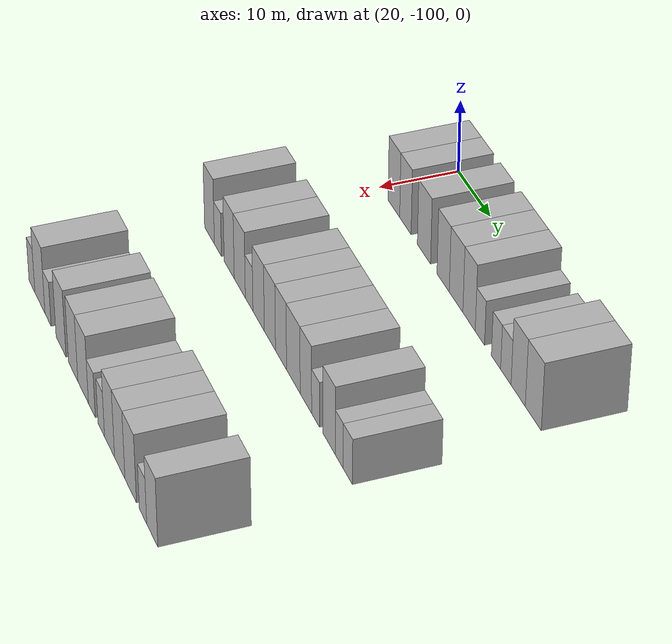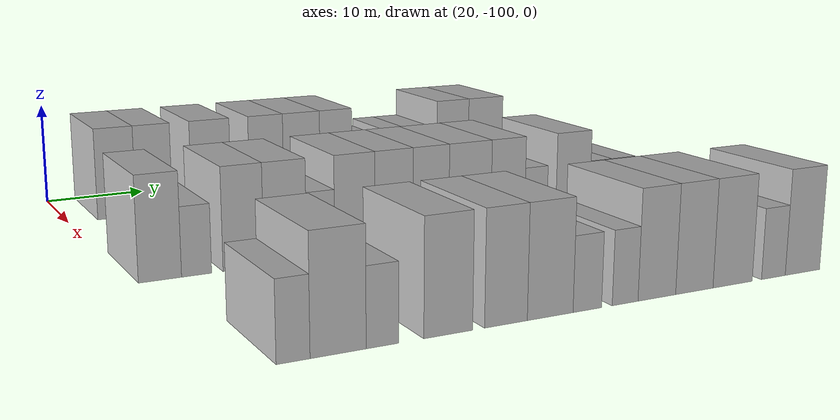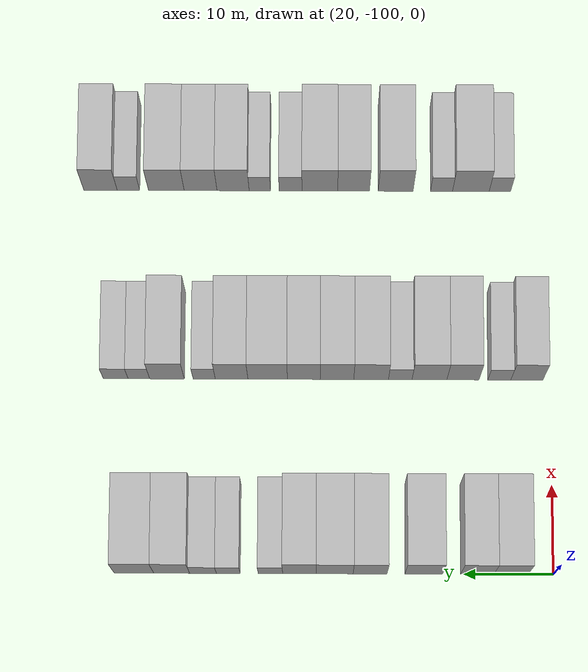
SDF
<sdf version="1.6">
 <world name="default">
  <model name="building_34">
   <static>1</static>
   <pose>25.0000 -95.2785 0 0.000000 0.000000 0.000000</pose>
   <link name="link">
    <pose>0 0 4.50 0 0 0</pose>
    <collision name="collision"><geometry><box><size>10.0000 3.8016 9.0000</size></box></geometry></collision>
    <visual name="visual">
     <cast_shadows>0</cast_shadows>
     <geometry><box><size>10.0000 3.8016 9.0000</size></box></geometry>
     <material>
      <script>
       <uri>model://HANNAS_wall/materials/scripts</uri>
       <uri>model://HANNAS_wall/materials/textures</uri>
       <name>vrc/HANNAS_wall</name>
      </script>
     </material>
    </visual>
   </link>
  </model>
  <model name="building_35">
   <static>1</static>
   <pose>25.0000 -91.5232 0 0.000000 0.000000 0.000000</pose>
   <link name="link">
    <pose>0 0 4.50 0 0 0</pose>
    <collision name="collision"><geometry><box><size>10.0000 3.7090 9.0000</size></box></geometry></collision>
    <visual name="visual">
     <cast_shadows>0</cast_shadows>
     <geometry><box><size>10.0000 3.7090 9.0000</size></box></geometry>
     <material>
      <script>
       <uri>model://HANNAS_wall/materials/scripts</uri>
       <uri>model://HANNAS_wall/materials/textures</uri>
       <name>vrc/HANNAS_wall</name>
      </script>
     </material>
    </visual>
   </link>
  </model>
  <model name="building_36">
   <static>1</static>
   <pose>25.0000 -85.5748 0 0.000000 0.000000 0.000000</pose>
   <link name="link">
    <pose>0 0 4.50 0 0 0</pose>
    <collision name="collision"><geometry><box><size>10.0000 4.1879 9.0000</size></box></geometry></collision>
    <visual name="visual">
     <cast_shadows>0</cast_shadows>
     <geometry><box><size>10.0000 4.1879 9.0000</size></box></geometry>
     <material>
      <script>
       <uri>model://HANNAS_wall/materials/scripts</uri>
       <uri>model://HANNAS_wall/materials/textures</uri>
       <name>vrc/HANNAS_wall</name>
      </script>
     </material>
    </visual>
   </link>
  </model>
  <model name="building_37">
   <static>1</static>
   <pose>25.0000 -79.5906 0 0.000000 0.000000 0.000000</pose>
   <link name="link">
    <pose>0 0 4.50 0 0 0</pose>
    <collision name="collision"><geometry><box><size>10.0000 3.7804 9.0000</size></box></geometry></collision>
    <visual name="visual">
     <cast_shadows>0</cast_shadows>
     <geometry><box><size>10.0000 3.7804 9.0000</size></box></geometry>
     <material>
      <script>
       <uri>model://HANNAS_wall/materials/scripts</uri>
       <uri>model://HANNAS_wall/materials/textures</uri>
       <name>vrc/HANNAS_wall</name>
      </script>
     </material>
    </visual>
   </link>
  </model>
  <model name="building_38">
   <static>1</static>
   <pose>25.0000 -75.6365 0 0.000000 0.000000 0.000000</pose>
   <link name="link">
    <pose>0 0 4.50 0 0 0</pose>
    <collision name="collision"><geometry><box><size>10.0000 4.1280 9.0000</size></box></geometry></collision>
    <visual name="visual">
     <cast_shadows>0</cast_shadows>
     <geometry><box><size>10.0000 4.1280 9.0000</size></box></geometry>
     <material>
      <script>
       <uri>model://HANNAS_wall/materials/scripts</uri>
       <uri>model://HANNAS_wall/materials/textures</uri>
       <name>vrc/HANNAS_wall</name>
      </script>
     </material>
    </visual>
   </link>
  </model>
  <model name="building_39">
   <static>1</static>
   <pose>25.0000 -71.7209 0 0.000000 0.000000 0.000000</pose>
   <link name="link">
    <pose>0 0 4.50 0 0 0</pose>
    <collision name="collision"><geometry><box><size>10.0000 3.7032 9.0000</size></box></geometry></collision>
    <visual name="visual">
     <cast_shadows>0</cast_shadows>
     <geometry><box><size>10.0000 3.7032 9.0000</size></box></geometry>
     <material>
      <script>
       <uri>model://HANNAS_wall/materials/scripts</uri>
       <uri>model://HANNAS_wall/materials/textures</uri>
       <name>vrc/HANNAS_wall</name>
      </script>
     </material>
    </visual>
   </link>
  </model>
  <model name="building_40">
   <static>1</static>
   <pose>25.0000 -68.5074 0 0.000000 0.000000 0.000000</pose>
   <link name="link">
    <pose>0 0 3.00 0 0 0</pose>
    <collision name="collision"><geometry><box><size>10.0000 2.7237 6.0000</size></box></geometry></collision>
    <visual name="visual">
     <cast_shadows>0</cast_shadows>
     <geometry><box><size>10.0000 2.7237 6.0000</size></box></geometry>
     <material>
      <script>
       <uri>model://HANNAS_wall/materials/scripts</uri>
       <uri>model://HANNAS_wall/materials/textures</uri>
       <name>vrc/HANNAS_wall</name>
      </script>
     </material>
    </visual>
   </link>
  </model>
  <model name="building_41">
   <static>1</static>
   <pose>25.0000 -63.8175 0 0.000000 0.000000 0.000000</pose>
   <link name="link">
    <pose>0 0 3.00 0 0 0</pose>
    <collision name="collision"><geometry><box><size>10.0000 2.6562 6.0000</size></box></geometry></collision>
    <visual name="visual">
     <cast_shadows>0</cast_shadows>
     <geometry><box><size>10.0000 2.6562 6.0000</size></box></geometry>
     <material>
      <script>
       <uri>model://HANNAS_wall/materials/scripts</uri>
       <uri>model://HANNAS_wall/materials/textures</uri>
       <name>vrc/HANNAS_wall</name>
      </script>
     </material>
    </visual>
   </link>
  </model>
  <model name="building_42">
   <static>1</static>
   <pose>25.0000 -61.0045 0 0.000000 0.000000 0.000000</pose>
   <link name="link">
    <pose>0 0 3.00 0 0 0</pose>
    <collision name="collision"><geometry><box><size>10.0000 2.9698 6.0000</size></box></geometry></collision>
    <visual name="visual">
     <cast_shadows>0</cast_shadows>
     <geometry><box><size>10.0000 2.9698 6.0000</size></box></geometry>
     <material>
      <script>
       <uri>model://HANNAS_wall/materials/scripts</uri>
       <uri>model://HANNAS_wall/materials/textures</uri>
       <name>vrc/HANNAS_wall</name>
      </script>
     </material>
    </visual>
   </link>
  </model>
  <model name="building_43">
   <static>1</static>
   <pose>25.0000 -57.5258 0 0.000000 0.000000 0.000000</pose>
   <link name="link">
    <pose>0 0 4.50 0 0 0</pose>
    <collision name="collision"><geometry><box><size>10.0000 3.9877 9.0000</size></box></geometry></collision>
    <visual name="visual">
     <cast_shadows>0</cast_shadows>
     <geometry><box><size>10.0000 3.9877 9.0000</size></box></geometry>
     <material>
      <script>
       <uri>model://HANNAS_wall/materials/scripts</uri>
       <uri>model://HANNAS_wall/materials/textures</uri>
       <name>vrc/HANNAS_wall</name>
      </script>
     </material>
    </visual>
   </link>
  </model>
  <model name="building_44">
   <static>1</static>
   <pose>25.0000 -53.3298 0 0.000000 0.000000 0.000000</pose>
   <link name="link">
    <pose>0 0 4.50 0 0 0</pose>
    <collision name="collision"><geometry><box><size>10.0000 4.4043 9.0000</size></box></geometry></collision>
    <visual name="visual">
     <cast_shadows>0</cast_shadows>
     <geometry><box><size>10.0000 4.4043 9.0000</size></box></geometry>
     <material>
      <script>
       <uri>model://HANNAS_wall/materials/scripts</uri>
       <uri>model://HANNAS_wall/materials/textures</uri>
       <name>vrc/HANNAS_wall</name>
      </script>
     </material>
    </visual>
   </link>
  </model>
  <model name="building_163">
   <static>1</static>
   <pose>47.0000 -97.3427 0 0.000000 0.000000 0.000000</pose>
   <link name="link">
    <pose>0 0 4.50 0 0 0</pose>
    <collision name="collision"><geometry><box><size>10.0000 3.6336 9.0000</size></box></geometry></collision>
    <visual name="visual">
     <cast_shadows>0</cast_shadows>
     <geometry><box><size>10.0000 3.6336 9.0000</size></box></geometry>
     <material>
      <script>
       <uri>model://HANNAS_wall/materials/scripts</uri>
       <uri>model://HANNAS_wall/materials/textures</uri>
       <name>vrc/HANNAS_wall</name>
      </script>
     </material>
    </visual>
   </link>
  </model>
  <model name="building_164">
   <static>1</static>
   <pose>47.0000 -94.2293 0 0.000000 0.000000 0.000000</pose>
   <link name="link">
    <pose>0 0 3.00 0 0 0</pose>
    <collision name="collision"><geometry><box><size>10.0000 2.5932 6.0000</size></box></geometry></collision>
    <visual name="visual">
     <cast_shadows>0</cast_shadows>
     <geometry><box><size>10.0000 2.5932 6.0000</size></box></geometry>
     <material>
      <script>
       <uri>model://HANNAS_wall/materials/scripts</uri>
       <uri>model://HANNAS_wall/materials/textures</uri>
       <name>vrc/HANNAS_wall</name>
      </script>
     </material>
    </visual>
   </link>
  </model>
  <model name="building_165">
   <static>1</static>
   <pose>47.0000 -90.1132 0 0.000000 0.000000 0.000000</pose>
   <link name="link">
    <pose>0 0 4.50 0 0 0</pose>
    <collision name="collision"><geometry><box><size>10.0000 3.6390 9.0000</size></box></geometry></collision>
    <visual name="visual">
     <cast_shadows>0</cast_shadows>
     <geometry><box><size>10.0000 3.6390 9.0000</size></box></geometry>
     <material>
      <script>
       <uri>model://HANNAS_wall/materials/scripts</uri>
       <uri>model://HANNAS_wall/materials/textures</uri>
       <name>vrc/HANNAS_wall</name>
      </script>
     </material>
    </visual>
   </link>
  </model>
  <model name="building_166">
   <static>1</static>
   <pose>47.0000 -86.3264 0 0.000000 0.000000 0.000000</pose>
   <link name="link">
    <pose>0 0 4.50 0 0 0</pose>
    <collision name="collision"><geometry><box><size>10.0000 3.9347 9.0000</size></box></geometry></collision>
    <visual name="visual">
     <cast_shadows>0</cast_shadows>
     <geometry><box><size>10.0000 3.9347 9.0000</size></box></geometry>
     <material>
      <script>
       <uri>model://HANNAS_wall/materials/scripts</uri>
       <uri>model://HANNAS_wall/materials/textures</uri>
       <name>vrc/HANNAS_wall</name>
      </script>
     </material>
    </visual>
   </link>
  </model>
  <model name="building_167">
   <static>1</static>
   <pose>47.0000 -83.0260 0 0.000000 0.000000 0.000000</pose>
   <link name="link">
    <pose>0 0 3.00 0 0 0</pose>
    <collision name="collision"><geometry><box><size>10.0000 2.6661 6.0000</size></box></geometry></collision>
    <visual name="visual">
     <cast_shadows>0</cast_shadows>
     <geometry><box><size>10.0000 2.6661 6.0000</size></box></geometry>
     <material>
      <script>
       <uri>model://HANNAS_wall/materials/scripts</uri>
       <uri>model://HANNAS_wall/materials/textures</uri>
       <name>vrc/HANNAS_wall</name>
      </script>
     </material>
    </visual>
   </link>
  </model>
  <model name="building_168">
   <static>1</static>
   <pose>47.0000 -79.7313 0 0.000000 0.000000 0.000000</pose>
   <link name="link">
    <pose>0 0 4.50 0 0 0</pose>
    <collision name="collision"><geometry><box><size>10.0000 3.9233 9.0000</size></box></geometry></collision>
    <visual name="visual">
     <cast_shadows>0</cast_shadows>
     <geometry><box><size>10.0000 3.9233 9.0000</size></box></geometry>
     <material>
      <script>
       <uri>model://HANNAS_wall/materials/scripts</uri>
       <uri>model://HANNAS_wall/materials/textures</uri>
       <name>vrc/HANNAS_wall</name>
      </script>
     </material>
    </visual>
   </link>
  </model>
  <model name="building_169">
   <static>1</static>
   <pose>47.0000 -75.8708 0 0.000000 0.000000 0.000000</pose>
   <link name="link">
    <pose>0 0 4.50 0 0 0</pose>
    <collision name="collision"><geometry><box><size>10.0000 3.7977 9.0000</size></box></geometry></collision>
    <visual name="visual">
     <cast_shadows>0</cast_shadows>
     <geometry><box><size>10.0000 3.7977 9.0000</size></box></geometry>
     <material>
      <script>
       <uri>model://HANNAS_wall/materials/scripts</uri>
       <uri>model://HANNAS_wall/materials/textures</uri>
       <name>vrc/HANNAS_wall</name>
      </script>
     </material>
    </visual>
   </link>
  </model>
  <model name="building_170">
   <static>1</static>
   <pose>47.0000 -72.1267 0 0.000000 0.000000 0.000000</pose>
   <link name="link">
    <pose>0 0 4.50 0 0 0</pose>
    <collision name="collision"><geometry><box><size>10.0000 3.6904 9.0000</size></box></geometry></collision>
    <visual name="visual">
     <cast_shadows>0</cast_shadows>
     <geometry><box><size>10.0000 3.6904 9.0000</size></box></geometry>
     <material>
      <script>
       <uri>model://HANNAS_wall/materials/scripts</uri>
       <uri>model://HANNAS_wall/materials/textures</uri>
       <name>vrc/HANNAS_wall</name>
      </script>
     </material>
    </visual>
   </link>
  </model>
  <model name="building_171">
   <static>1</static>
   <pose>47.0000 -68.0451 0 0.000000 0.000000 0.000000</pose>
   <link name="link">
    <pose>0 0 4.50 0 0 0</pose>
    <collision name="collision"><geometry><box><size>10.0000 4.4730 9.0000</size></box></geometry></collision>
    <visual name="visual">
     <cast_shadows>0</cast_shadows>
     <geometry><box><size>10.0000 4.4730 9.0000</size></box></geometry>
     <material>
      <script>
       <uri>model://HANNAS_wall/materials/scripts</uri>
       <uri>model://HANNAS_wall/materials/textures</uri>
       <name>vrc/HANNAS_wall</name>
      </script>
     </material>
    </visual>
   </link>
  </model>
  <model name="building_172">
   <static>1</static>
   <pose>47.0000 -63.9631 0 0.000000 0.000000 0.000000</pose>
   <link name="link">
    <pose>0 0 4.50 0 0 0</pose>
    <collision name="collision"><geometry><box><size>10.0000 3.6911 9.0000</size></box></geometry></collision>
    <visual name="visual">
     <cast_shadows>0</cast_shadows>
     <geometry><box><size>10.0000 3.6911 9.0000</size></box></geometry>
     <material>
      <script>
       <uri>model://HANNAS_wall/materials/scripts</uri>
       <uri>model://HANNAS_wall/materials/textures</uri>
       <name>vrc/HANNAS_wall</name>
      </script>
     </material>
    </visual>
   </link>
  </model>
  <model name="building_173">
   <static>1</static>
   <pose>47.0000 -60.8670 0 0.000000 0.000000 0.000000</pose>
   <link name="link">
    <pose>0 0 3.00 0 0 0</pose>
    <collision name="collision"><geometry><box><size>10.0000 2.5010 6.0000</size></box></geometry></collision>
    <visual name="visual">
     <cast_shadows>0</cast_shadows>
     <geometry><box><size>10.0000 2.5010 6.0000</size></box></geometry>
     <material>
      <script>
       <uri>model://HANNAS_wall/materials/scripts</uri>
       <uri>model://HANNAS_wall/materials/textures</uri>
       <name>vrc/HANNAS_wall</name>
      </script>
     </material>
    </visual>
   </link>
  </model>
  <model name="building_174">
   <static>1</static>
   <pose>47.0000 -56.6576 0 0.000000 0.000000 0.000000</pose>
   <link name="link">
    <pose>0 0 4.50 0 0 0</pose>
    <collision name="collision"><geometry><box><size>10.0000 3.9178 9.0000</size></box></geometry></collision>
    <visual name="visual">
     <cast_shadows>0</cast_shadows>
     <geometry><box><size>10.0000 3.9178 9.0000</size></box></geometry>
     <material>
      <script>
       <uri>model://HANNAS_wall/materials/scripts</uri>
       <uri>model://HANNAS_wall/materials/textures</uri>
       <name>vrc/HANNAS_wall</name>
      </script>
     </material>
    </visual>
   </link>
  </model>
  <model name="building_175">
   <static>1</static>
   <pose>47.0000 -53.4836 0 0.000000 0.000000 0.000000</pose>
   <link name="link">
    <pose>0 0 3.00 0 0 0</pose>
    <collision name="collision"><geometry><box><size>10.0000 2.4301 6.0000</size></box></geometry></collision>
    <visual name="visual">
     <cast_shadows>0</cast_shadows>
     <geometry><box><size>10.0000 2.4301 6.0000</size></box></geometry>
     <material>
      <script>
       <uri>model://HANNAS_wall/materials/scripts</uri>
       <uri>model://HANNAS_wall/materials/textures</uri>
       <name>vrc/HANNAS_wall</name>
      </script>
     </material>
    </visual>
   </link>
  </model>
  <model name="building_176">
   <static>1</static>
   <pose>47.0000 -50.8627 0 0.000000 0.000000 0.000000</pose>
   <link name="link">
    <pose>0 0 3.00 0 0 0</pose>
    <collision name="collision"><geometry><box><size>10.0000 2.8116 6.0000</size></box></geometry></collision>
    <visual name="visual">
     <cast_shadows>0</cast_shadows>
     <geometry><box><size>10.0000 2.8116 6.0000</size></box></geometry>
     <material>
      <script>
       <uri>model://HANNAS_wall/materials/scripts</uri>
       <uri>model://HANNAS_wall/materials/textures</uri>
       <name>vrc/HANNAS_wall</name>
      </script>
     </material>
    </visual>
   </link>
  </model>
  <model name="building_295">
   <static>1</static>
   <pose>69.0000 -94.5510 0 0.000000 0.000000 0.000000</pose>
   <link name="link">
    <pose>0 0 3.00 0 0 0</pose>
    <collision name="collision"><geometry><box><size>10.0000 2.4675 6.0000</size></box></geometry></collision>
    <visual name="visual">
     <cast_shadows>0</cast_shadows>
     <geometry><box><size>10.0000 2.4675 6.0000</size></box></geometry>
     <material>
      <script>
       <uri>model://HANNAS_wall/materials/scripts</uri>
       <uri>model://HANNAS_wall/materials/textures</uri>
       <name>vrc/HANNAS_wall</name>
      </script>
     </material>
    </visual>
   </link>
  </model>
  <model name="building_296">
   <static>1</static>
   <pose>69.0000 -91.2119 0 0.000000 0.000000 0.000000</pose>
   <link name="link">
    <pose>0 0 4.50 0 0 0</pose>
    <collision name="collision"><geometry><box><size>10.0000 4.2108 9.0000</size></box></geometry></collision>
    <visual name="visual">
     <cast_shadows>0</cast_shadows>
     <geometry><box><size>10.0000 4.2108 9.0000</size></box></geometry>
     <material>
      <script>
       <uri>model://HANNAS_wall/materials/scripts</uri>
       <uri>model://HANNAS_wall/materials/textures</uri>
       <name>vrc/HANNAS_wall</name>
      </script>
     </material>
    </visual>
   </link>
  </model>
  <model name="building_297">
   <static>1</static>
   <pose>69.0000 -87.8429 0 0.000000 0.000000 0.000000</pose>
   <link name="link">
    <pose>0 0 3.00 0 0 0</pose>
    <collision name="collision"><geometry><box><size>10.0000 2.5271 6.0000</size></box></geometry></collision>
    <visual name="visual">
     <cast_shadows>0</cast_shadows>
     <geometry><box><size>10.0000 2.5271 6.0000</size></box></geometry>
     <material>
      <script>
       <uri>model://HANNAS_wall/materials/scripts</uri>
       <uri>model://HANNAS_wall/materials/textures</uri>
       <name>vrc/HANNAS_wall</name>
      </script>
     </material>
    </visual>
   </link>
  </model>
  <model name="building_298">
   <static>1</static>
   <pose>69.0000 -82.5789 0 0.000000 0.000000 0.000000</pose>
   <link name="link">
    <pose>0 0 4.50 0 0 0</pose>
    <collision name="collision"><geometry><box><size>10.0000 4.0009 9.0000</size></box></geometry></collision>
    <visual name="visual">
     <cast_shadows>0</cast_shadows>
     <geometry><box><size>10.0000 4.0009 9.0000</size></box></geometry>
     <material>
      <script>
       <uri>model://HANNAS_wall/materials/scripts</uri>
       <uri>model://HANNAS_wall/materials/textures</uri>
       <name>vrc/HANNAS_wall</name>
      </script>
     </material>
    </visual>
   </link>
  </model>
  <model name="building_299">
   <static>1</static>
   <pose>69.0000 -77.7424 0 0.000000 0.000000 0.000000</pose>
   <link name="link">
    <pose>0 0 4.50 0 0 0</pose>
    <collision name="collision"><geometry><box><size>10.0000 3.6721 9.0000</size></box></geometry></collision>
    <visual name="visual">
     <cast_shadows>0</cast_shadows>
     <geometry><box><size>10.0000 3.6721 9.0000</size></box></geometry>
     <material>
      <script>
       <uri>model://HANNAS_wall/materials/scripts</uri>
       <uri>model://HANNAS_wall/materials/textures</uri>
       <name>vrc/HANNAS_wall</name>
      </script>
     </material>
    </visual>
   </link>
  </model>
  <model name="building_300">
   <static>1</static>
   <pose>69.0000 -73.8674 0 0.000000 0.000000 0.000000</pose>
   <link name="link">
    <pose>0 0 4.50 0 0 0</pose>
    <collision name="collision"><geometry><box><size>10.0000 4.0779 9.0000</size></box></geometry></collision>
    <visual name="visual">
     <cast_shadows>0</cast_shadows>
     <geometry><box><size>10.0000 4.0779 9.0000</size></box></geometry>
     <material>
      <script>
       <uri>model://HANNAS_wall/materials/scripts</uri>
       <uri>model://HANNAS_wall/materials/textures</uri>
       <name>vrc/HANNAS_wall</name>
      </script>
     </material>
    </visual>
   </link>
  </model>
  <model name="building_301">
   <static>1</static>
   <pose>69.0000 -70.5176 0 0.000000 0.000000 0.000000</pose>
   <link name="link">
    <pose>0 0 3.00 0 0 0</pose>
    <collision name="collision"><geometry><box><size>10.0000 2.6216 6.0000</size></box></geometry></collision>
    <visual name="visual">
     <cast_shadows>0</cast_shadows>
     <geometry><box><size>10.0000 2.6216 6.0000</size></box></geometry>
     <material>
      <script>
       <uri>model://HANNAS_wall/materials/scripts</uri>
       <uri>model://HANNAS_wall/materials/textures</uri>
       <name>vrc/HANNAS_wall</name>
      </script>
     </material>
    </visual>
   </link>
  </model>
  <model name="building_302">
   <static>1</static>
   <pose>69.0000 -66.9798 0 0.000000 0.000000 0.000000</pose>
   <link name="link">
    <pose>0 0 3.00 0 0 0</pose>
    <collision name="collision"><geometry><box><size>10.0000 2.4540 6.0000</size></box></geometry></collision>
    <visual name="visual">
     <cast_shadows>0</cast_shadows>
     <geometry><box><size>10.0000 2.4540 6.0000</size></box></geometry>
     <material>
      <script>
       <uri>model://HANNAS_wall/materials/scripts</uri>
       <uri>model://HANNAS_wall/materials/textures</uri>
       <name>vrc/HANNAS_wall</name>
      </script>
     </material>
    </visual>
   </link>
  </model>
  <model name="building_303">
   <static>1</static>
   <pose>69.0000 -63.9105 0 0.000000 0.000000 0.000000</pose>
   <link name="link">
    <pose>0 0 4.50 0 0 0</pose>
    <collision name="collision"><geometry><box><size>10.0000 3.6845 9.0000</size></box></geometry></collision>
    <visual name="visual">
     <cast_shadows>0</cast_shadows>
     <geometry><box><size>10.0000 3.6845 9.0000</size></box></geometry>
     <material>
      <script>
       <uri>model://HANNAS_wall/materials/scripts</uri>
       <uri>model://HANNAS_wall/materials/textures</uri>
       <name>vrc/HANNAS_wall</name>
      </script>
     </material>
    </visual>
   </link>
  </model>
  <model name="building_304">
   <static>1</static>
   <pose>69.0000 -60.1803 0 0.000000 0.000000 0.000000</pose>
   <link name="link">
    <pose>0 0 4.50 0 0 0</pose>
    <collision name="collision"><geometry><box><size>10.0000 3.7758 9.0000</size></box></geometry></collision>
    <visual name="visual">
     <cast_shadows>0</cast_shadows>
     <geometry><box><size>10.0000 3.7758 9.0000</size></box></geometry>
     <material>
      <script>
       <uri>model://HANNAS_wall/materials/scripts</uri>
       <uri>model://HANNAS_wall/materials/textures</uri>
       <name>vrc/HANNAS_wall</name>
      </script>
     </material>
    </visual>
   </link>
  </model>
  <model name="building_305">
   <static>1</static>
   <pose>69.0000 -56.2400 0 0.000000 0.000000 0.000000</pose>
   <link name="link">
    <pose>0 0 4.50 0 0 0</pose>
    <collision name="collision"><geometry><box><size>10.0000 4.1049 9.0000</size></box></geometry></collision>
    <visual name="visual">
     <cast_shadows>0</cast_shadows>
     <geometry><box><size>10.0000 4.1049 9.0000</size></box></geometry>
     <material>
      <script>
       <uri>model://HANNAS_wall/materials/scripts</uri>
       <uri>model://HANNAS_wall/materials/textures</uri>
       <name>vrc/HANNAS_wall</name>
      </script>
     </material>
    </visual>
   </link>
  </model>
  <model name="building_306">
   <static>1</static>
   <pose>69.0000 -51.8963 0 0.000000 0.000000 0.000000</pose>
   <link name="link">
    <pose>0 0 3.00 0 0 0</pose>
    <collision name="collision"><geometry><box><size>10.0000 2.5826 6.0000</size></box></geometry></collision>
    <visual name="visual">
     <cast_shadows>0</cast_shadows>
     <geometry><box><size>10.0000 2.5826 6.0000</size></box></geometry>
     <material>
      <script>
       <uri>model://HANNAS_wall/materials/scripts</uri>
       <uri>model://HANNAS_wall/materials/textures</uri>
       <name>vrc/HANNAS_wall</name>
      </script>
     </material>
    </visual>
   </link>
  </model>
  <model name="building_307">
   <static>1</static>
   <pose>69.0000 -48.6881 0 0.000000 0.000000 0.000000</pose>
   <link name="link">
    <pose>0 0 4.50 0 0 0</pose>
    <collision name="collision"><geometry><box><size>10.0000 3.8338 9.0000</size></box></geometry></collision>
    <visual name="visual">
     <cast_shadows>0</cast_shadows>
     <geometry><box><size>10.0000 3.8338 9.0000</size></box></geometry>
     <material>
      <script>
       <uri>model://HANNAS_wall/materials/scripts</uri>
       <uri>model://HANNAS_wall/materials/textures</uri>
       <name>vrc/HANNAS_wall</name>
      </script>
     </material>
    </visual>
   </link>
  </model>
 </world>
</sdf>
